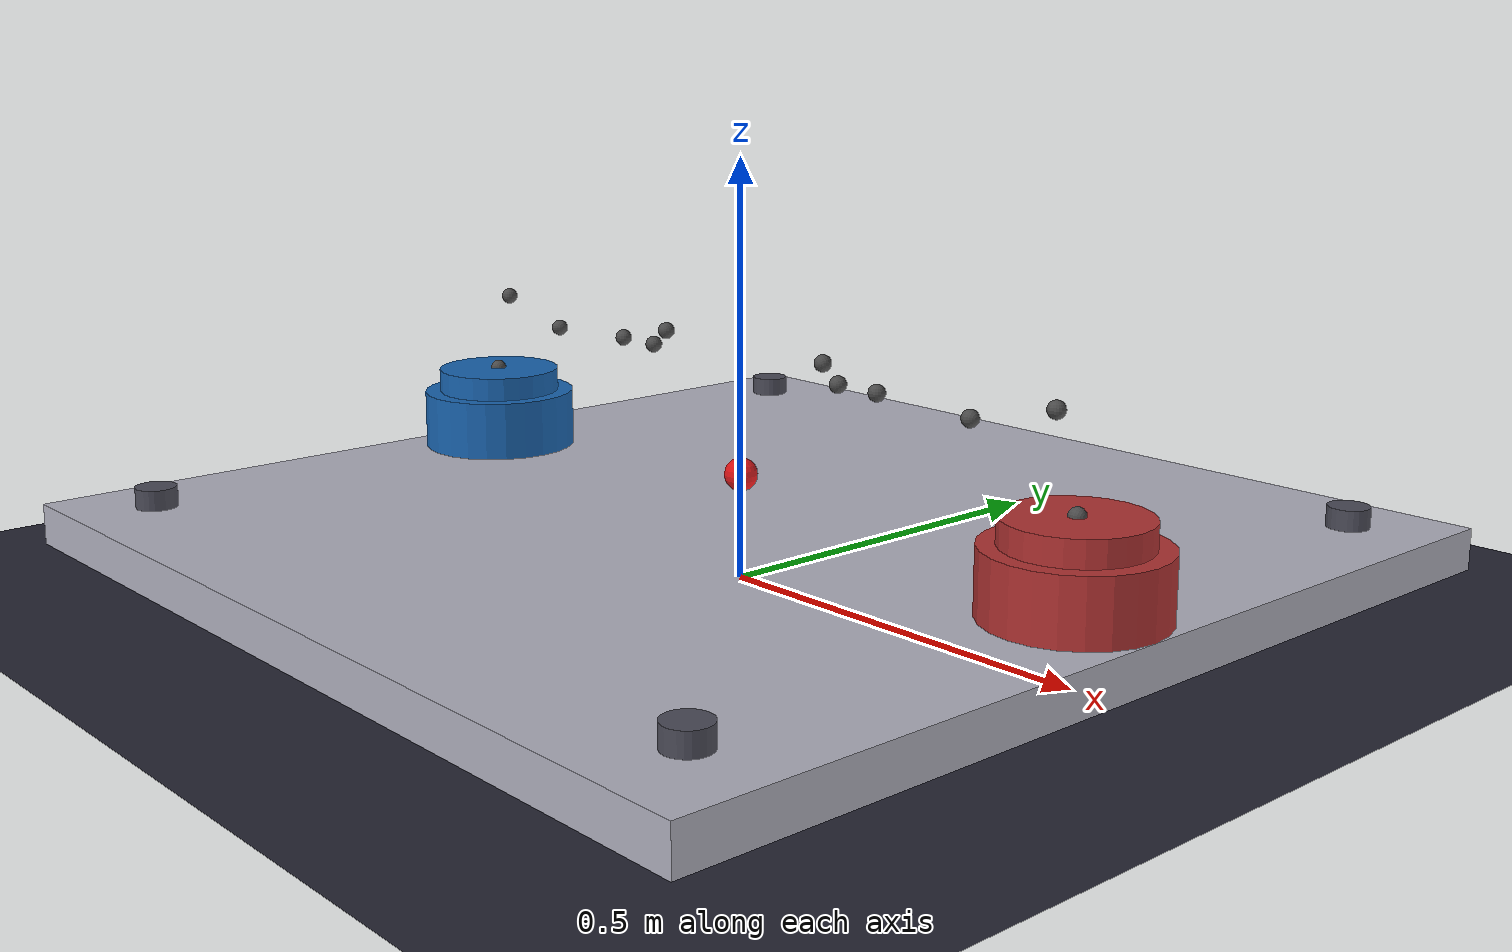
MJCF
<?xml version="1.0" encoding="utf-8"?>
<mujoco model="workbench_xlerobot_dual_arm">
  <compiler angle="radian" autolimits="true" />
  <option gravity="0 0 -9.81" timestep="0.002" integrator="implicitfast" />
  <default>
    <joint damping="0.5" armature="0.05" frictionloss="0.01" />
    <geom condim="6" friction="1 0.5 0.5" />
    <position kp="200" dampratio="0.7" forcerange="-100 100" ctrlrange="-3.14158 3.14158" />
  </default>
  <asset>
    <!-- 材质 -->
    <material name="table_top" rgba="0.7 0.7 0.75 1" specular="0.2" shininess="0.1" />
    <material name="table_leg" rgba="0.3 0.3 0.35 1" specular="0.3" shininess="0.2" />
    <material name="floor" rgba="0.15 0.15 0.2 1" specular="0.1" shininess="0.1" />
    <material name="target" rgba="1 0 0 0.8" />
    <material name="black" rgba="0.3 0.3 0.3 1" specular="0.1" shininess="0.1" />
    <material name="base_left" rgba="0.1 0.4 0.7 1" specular="0.3" shininess="0.3" />
    <material name="base_right" rgba="0.7 0.2 0.2 1" specular="0.3" shininess="0.3" />
    <!-- XLeRobot 机械臂 STL 模型 -->
  </asset>
  <worldbody>
    <!-- 灯光 -->
    <light name="spotlight" pos="0 0 2.5" dir="0 0 -1" directional="true" />
    <!-- 地面 -->
    <geom name="floor" type="plane" size="3 3 0.1" material="floor" contype="1" conaffinity="1" />
    <!-- 工作台 -->
    <body name="workbench" pos="0 0 0.05">
      <!-- 桌面：1.2m x 1.2m 正方形 -->
      <geom name="tabletop" type="box" size="0.6 0.6 0.025" material="table_top" contype="1" conaffinity="1" />
      <!-- 四根桌腿 -->
      <geom name="leg_fl" type="cylinder" size="0.025 0.05" pos="-0.5 -0.5 0" material="table_leg" />
      <geom name="leg_fr" type="cylinder" size="0.025 0.05" pos="0.5 -0.5 0" material="table_leg" />
      <geom name="leg_bl" type="cylinder" size="0.025 0.05" pos="-0.5 0.5 0" material="table_leg" />
      <geom name="leg_br" type="cylinder" size="0.025 0.05" pos="0.5 0.5 0" material="table_leg" />
      <!-- 左机械臂（XLeRobot 模型，完全照搬原始结构） -->
      <body name="robot1_base" pos="-0.5 0 0.05">
        <!-- 基座 -->
        <geom type="cylinder" size="0.1 0.05" material="base_left" />
        <body name="robot1_mount" pos="0 0 0.05">
          <geom type="cylinder" size="0.08 0.03" material="base_left" />
          <!-- J1: Rotation (axis: 0 -1 0) - 原始 XLeRobot 配置 -->
          <body name="robot1_rotation" pos="0 0 0.03" quat="0.499998 0.5 0.500002 0.5">
            <inertial pos="-9.07886e-05 0.0590972 0.031089" quat="0.363978 0.441169 -0.623108 0.533504" mass="0.119226" diaginertia="5.94278e-05 5.89975e-05 3.13712e-05" />
            <joint name="robot1_j1" pos="0 0 0" axis="0 -1 0" range="-2.1 2.1" damping="0.1" armature="0.01" frictionloss="0.001" />
            <geom type="sphere" material="black" size="0.01" contype="0" conaffinity="0" />
            <geom type="sphere" material="black" size="0.01" contype="0" conaffinity="0" />
            <!-- J2: Pitch (axis: -1 0 0) -->
            <body name="robot1_pitch" pos="0 0.1025 0.0306" quat="0.707105 0.707108 0 0">
              <inertial pos="-1.72052e-05 0.0701802 0.00310545" quat="0.50104 0.498994 -0.493562 0.50632" mass="0.162409" diaginertia="0.000213312 0.000167164 7.01522e-05" />
              <joint name="robot1_j2" pos="0 0 0" axis="-1 0 0" range="-0.1 3.45" />
              <geom type="sphere" material="black" size="0.01" contype="0" conaffinity="0" />
              <geom type="sphere" material="black" size="0.01" contype="0" conaffinity="0" />
              <!-- J3: Elbow (axis: 1 0 0) -->
              <body name="robot1_elbow" pos="0 0.11257 0.028" quat="0.707105 -0.707108 0 0">
                <inertial pos="-0.00339604 0.00137796 0.0768007" quat="0.701995 0.0787996 0.0645626 0.704859" mass="0.147968" diaginertia="0.000138803 0.000107748 4.84242e-05" />
                <joint name="robot1_j3" pos="0 0 0" axis="1 0 0" range="-0.2 3.14159" />
                <geom type="sphere" material="black" size="0.01" contype="0" conaffinity="0" />
                <geom type="sphere" material="black" size="0.01" contype="0" conaffinity="0" />
                <!-- J4: Wrist_Pitch (axis: 1 0 0) -->
                <body name="robot1_wrist_pitch" pos="0 0.0052 0.1349" quat="0.707105 -0.707108 0 0">
                  <inertial pos="-0.00852653 -0.0352279 -2.34622e-05" quat="-0.0522806 0.705235 0.0549524 0.704905" mass="0.0661321" diaginertia="3.45403e-05 2.39041e-05 1.94704e-05" />
                  <joint name="robot1_j4" pos="0 0 0" axis="1 0 0" range="-1.8 1.8" />
                  <geom type="sphere" material="black" size="0.01" contype="0" conaffinity="0" />
                  <geom type="sphere" material="black" size="0.01" contype="0" conaffinity="0" />
                  <!-- J5: Wrist_Roll (axis: 0 -1 0) - Fixed_Jaw 结构 -->
                  <body name="robot1_fixed_jaw" pos="0 -0.0601 0" quat="0.707105 0 0.707108 0">
                    <inertial pos="0.00552377 -0.0280167 0.000483583" quat="0.41836 0.620891 -0.350644 0.562599" mass="0.0929859" diaginertia="5.03136e-05 4.64098e-05 2.72961e-05" />
                    <joint name="robot1_j5" pos="0 0 0" axis="0 -1 0" range="-3.14159 3.14159" />
                    <geom type="sphere" material="black" size="0.01" contype="0" conaffinity="0" />
                    <geom type="sphere" material="black" size="0.01" contype="0" conaffinity="0" />
                    <!-- J6: Jaw (axis: 0 0 1) - Moving_Jaw -->
                    <body name="robot1_gripper" pos="-0.0202 -0.0244 0" quat="3.45518e-07 -0.0940644 0.995566 -3.65692e-06">
                      <inertial pos="-0.00161745 -0.0303473 0.000449646" quat="0.696562 0.716737 -0.0239844 -0.0227026" mass="0.0202444" diaginertia="1.11265e-05 8.99651e-06 2.99548e-06" />
                      <joint name="robot1_j6" pos="0 0 0" axis="0 0 1" range="0 1" />
                      <geom type="sphere" material="black" size="0.01" contype="0" conaffinity="0" />
                      <geom type="sphere" material="black" size="0.01" contype="0" conaffinity="0" />
                      <geom type="sphere" material="black" size="0.01" contype="0" conaffinity="0" />
                    </body>
                  </body>
                </body>
              </body>
            </body>
          </body>
        </body>
      </body>
      <!-- 右机械臂（XLeRobot 模型，旋转 180 度朝向左臂） -->
      <body name="robot2_base" pos="0.5 0 0.05">
        <!-- 基座 -->
        <geom type="cylinder" size="0.1 0.05" material="base_right" />
        <body name="robot2_mount" pos="0 0 0.05">
          <geom type="cylinder" size="0.08 0.03" material="base_right" />
          <!-- J1: Rotation (axis: 0 1 0) - 绕 Z 轴旋转，但与robot1相反 -->
          <body name="robot2_rotation" pos="0 0 0.03" quat="0.5 0.5 -0.5 -0.5">
            <inertial pos="-9.07886e-05 0.0590972 0.031089" quat="0.363978 0.441169 -0.623108 0.533504" mass="0.119226" diaginertia="5.94278e-05 5.89975e-05 3.13712e-05" />
            <joint name="robot2_j1" pos="0 0 0" axis="0 -1 0" range="-2.1 2.1" damping="0.1" armature="0.01" frictionloss="0.001" />
            <geom type="sphere" material="black" size="0.01" contype="0" conaffinity="0" />
            <geom type="sphere" material="black" size="0.01" contype="0" conaffinity="0" />
            <!-- J2: Pitch (axis: -1 0 0) - 与左臂完全相同 -->
            <body name="robot2_pitch" pos="0 0.1025 0.0306" quat="0.707105 0.707108 0 0">
              <inertial pos="-1.72052e-05 0.0701802 0.00310545" quat="0.50104 0.498994 -0.493562 0.50632" mass="0.162409" diaginertia="0.000213312 0.000167164 7.01522e-05" />
              <joint name="robot2_j2" pos="0 0 0" axis="-1 0 0" range="-0.1 3.45" />
              <geom type="sphere" material="black" size="0.01" contype="0" conaffinity="0" />
              <geom type="sphere" material="black" size="0.01" contype="0" conaffinity="0" />
              <!-- J3: Elbow (axis: 1 0 0) - 与左臂完全相同 -->
              <body name="robot2_elbow" pos="0 0.11257 0.028" quat="0.707105 -0.707108 0 0">
                <inertial pos="-0.00339604 0.00137796 0.0768007" quat="0.701995 0.0787996 0.0645626 0.704859" mass="0.147968" diaginertia="0.000138803 0.000107748 4.84242e-05" />
                <joint name="robot2_j3" pos="0 0 0" axis="1 0 0" range="-0.2 3.14159" />
                <geom type="sphere" material="black" size="0.01" contype="0" conaffinity="0" />
                <geom type="sphere" material="black" size="0.01" contype="0" conaffinity="0" />
                <!-- J4: Wrist_Pitch (axis: 1 0 0) - 与左臂完全相同 -->
                <body name="robot2_wrist_pitch" pos="0 0.0052 0.1349" quat="0.707105 -0.707108 0 0">
                  <inertial pos="-0.00852653 -0.0352279 -2.34622e-05" quat="-0.0522806 0.705235 0.0549524 0.704905" mass="0.0661321" diaginertia="3.45403e-05 2.39041e-05 1.94704e-05" />
                  <joint name="robot2_j4" pos="0 0 0" axis="1 0 0" range="-1.8 1.8" />
                  <geom type="sphere" material="black" size="0.01" contype="0" conaffinity="0" />
                  <geom type="sphere" material="black" size="0.01" contype="0" conaffinity="0" />
                  <!-- J5: Wrist_Roll (axis: 0 -1 0) - Fixed_Jaw 结构 -->
                  <body name="robot2_fixed_jaw" pos="0 -0.0601 0" quat="0.707105 0 0.707108 0">
                    <inertial pos="0.00552377 -0.0280167 0.000483583" quat="0.41836 0.620891 -0.350644 0.562599" mass="0.0929859" diaginertia="5.03136e-05 4.64098e-05 2.72961e-05" />
                    <joint name="robot2_j5" pos="0 0 0" axis="0 -1 0" range="-3.14159 3.14159" />
                    <geom type="sphere" material="black" size="0.01" contype="0" conaffinity="0" />
                    <geom type="sphere" material="black" size="0.01" contype="0" conaffinity="0" />
                    <!-- J6: Jaw (axis: 0 0 1) - Moving_Jaw -->
                    <body name="robot2_gripper" pos="-0.0202 -0.0244 0" quat="3.45518e-07 -0.0940644 0.995566 -3.65692e-06">
                      <inertial pos="-0.00161745 -0.0303473 0.000449646" quat="0.696562 0.716737 -0.0239844 -0.0227026" mass="0.0202444" diaginertia="1.11265e-05 8.99651e-06 2.99548e-06" />
                      <joint name="robot2_j6" pos="0 0 0" axis="0 0 1" range="0 1" />
                      <geom type="sphere" material="black" size="0.01" contype="0" conaffinity="0" />
                      <geom type="sphere" material="black" size="0.01" contype="0" conaffinity="0" />
                      <geom type="sphere" material="black" size="0.01" contype="0" conaffinity="0" />
                    </body>
                  </body>
                </body>
              </body>
            </body>
          </body>
        </body>
      </body>
      <!-- 中心标记点 -->
      <site name="center" pos="0 0 0.076" size="0.02" material="target" />
    </body>
    <!-- 多机位相机：真实机械臂模型的素材采集和训练渲染 -->
    <camera name="top" pos="0 0 2.35" xyaxes="1 0 0 0 1 0" fovy="42" />
    <camera name="front" pos="0 -1.8 1.2" xyaxes="1 0 0 0 0.339644 0.940554" fovy="45" />
    <camera name="side" pos="1.8 0 1.2" xyaxes="0 1 0 -0.339644 0 0.940554" fovy="45" />
    <camera name="left_oblique" pos="-1.4 -1.3 1.3" xyaxes="0.680451 -0.732793 0 0.267777 0.24865 0.930843" fovy="42" />
    <camera name="right_oblique" pos="1.4 -1.3 1.3" xyaxes="0.680451 0.732793 0 -0.267777 0.24865 0.930843" fovy="42" />
    <camera name="assembly" pos="0 -1 0.9" xyaxes="1 0 0 0 0.33035 0.943858" fovy="34" />
    <camera name="closeup" pos="0 -0.75 1.05" xyaxes="1 0 0 0 0.682318 0.731055" fovy="26" />
  </worldbody>
  <actuator>
    <!-- 左机械臂执行器 -->
    <position name="robot1_a1" joint="robot1_j1" kp="50000" dampratio="0.4" forcerange="-50000 50000" ctrlrange="-2.1 2.1" />
    <position name="robot1_a2" joint="robot1_j2" ctrlrange="-0.1 3.45" />
    <position name="robot1_a3" joint="robot1_j3" ctrlrange="-0.2 3.14159" />
    <position name="robot1_a4" joint="robot1_j4" ctrlrange="-1.8 1.8" />
    <position name="robot1_a5" joint="robot1_j5" ctrlrange="-3.14159 3.14159" />
    <position name="robot1_a6" joint="robot1_j6" ctrlrange="0 1" />
    <!-- 右机械臂执行器 -->
    <position name="robot2_a1" joint="robot2_j1" kp="50000" dampratio="0.4" forcerange="-50000 50000" ctrlrange="-2.1 2.1" />
    <position name="robot2_a2" joint="robot2_j2" ctrlrange="-0.1 3.45" />
    <position name="robot2_a3" joint="robot2_j3" ctrlrange="-0.2 3.14159" />
    <position name="robot2_a4" joint="robot2_j4" ctrlrange="-1.8 1.8" />
    <position name="robot2_a5" joint="robot2_j5" ctrlrange="-3.14159 3.14159" />
    <position name="robot2_a6" joint="robot2_j6" ctrlrange="0 1" />
  </actuator>
  <statistic center="0 0 0.8" extent="2" />
  <visual>
    <global offwidth="1280" offheight="720" />
  </visual>
</mujoco>
